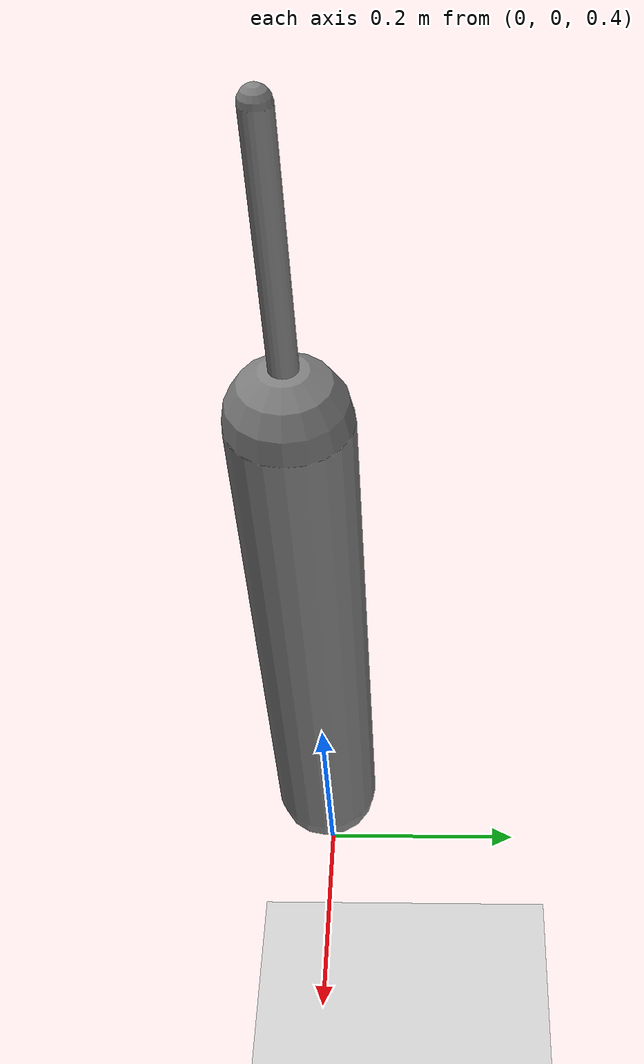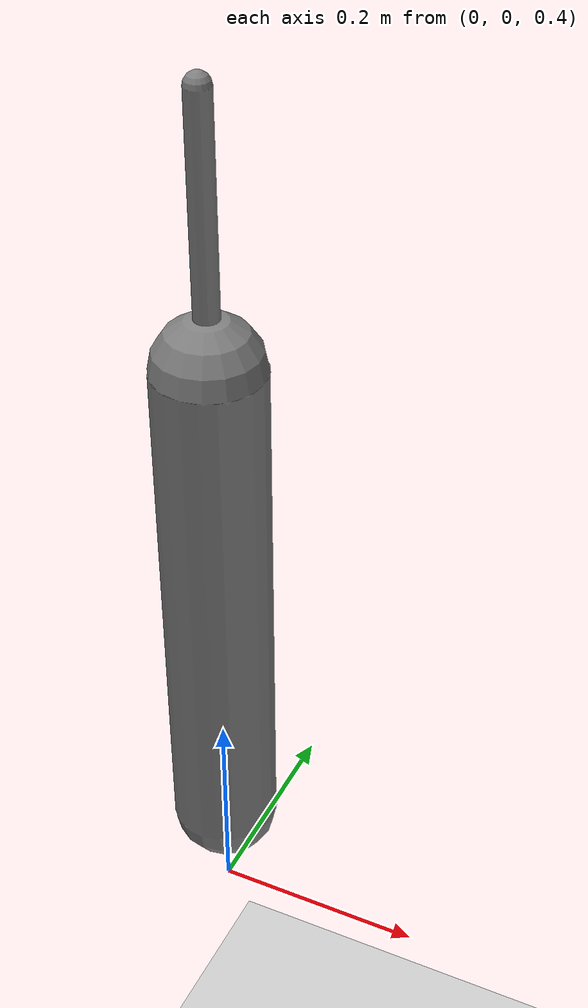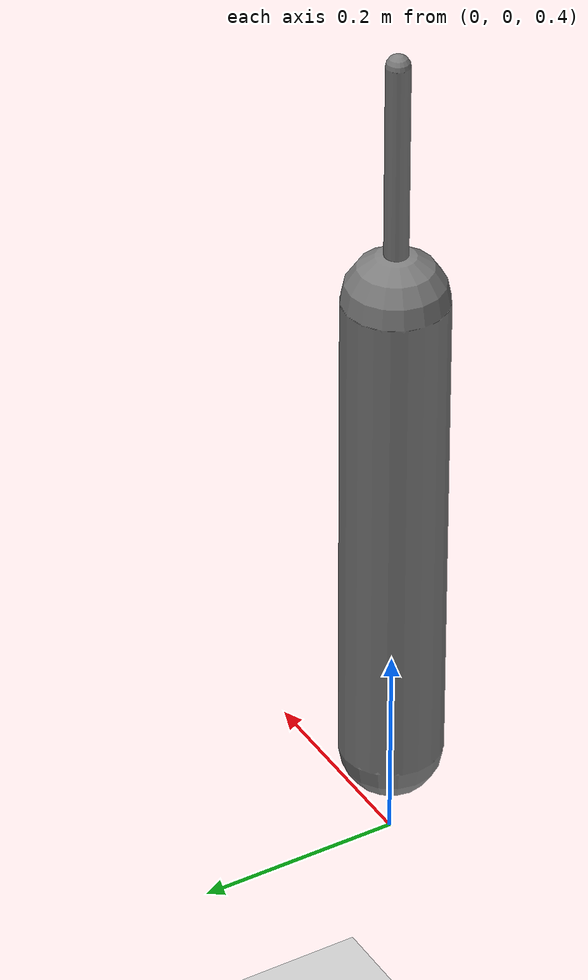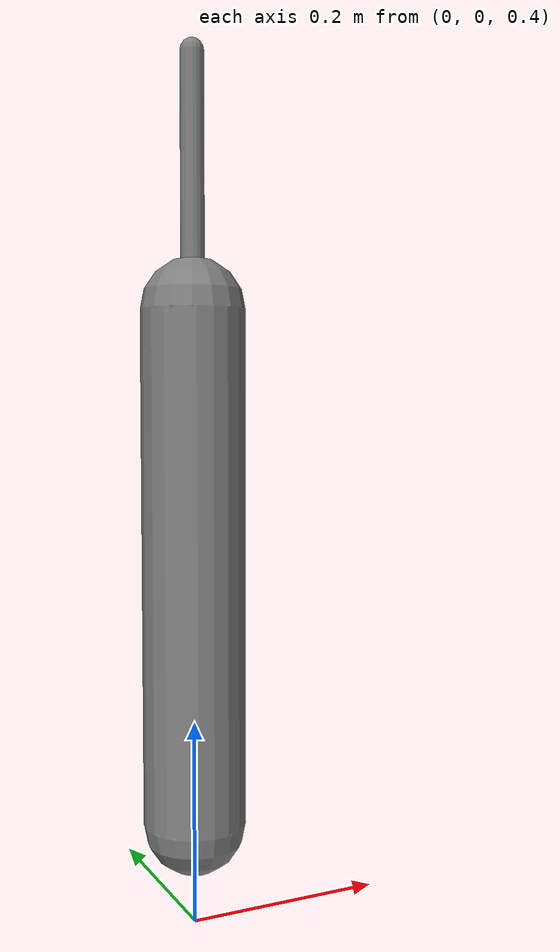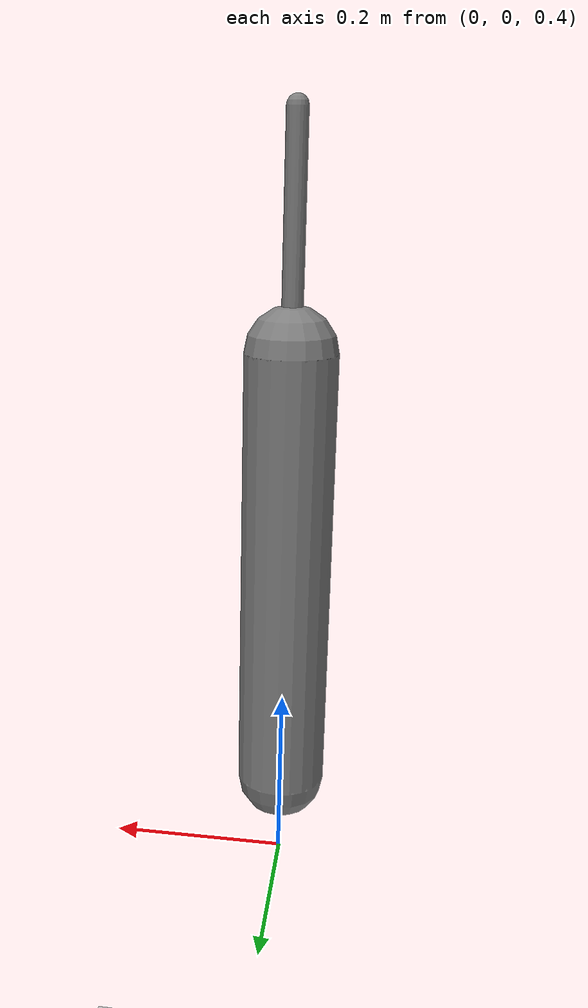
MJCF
<?xml version='1.0' encoding='UTF-8'?>
<mujoco model="RobotModel">
  <option gravity="0 0 -9.81" timestep="0.002" solver="CG" iterations="500" integrator="Euler"/>
  <worldbody>
    <geom name="Floor" type="plane" size="10 10 0.1" pos="0 0 0" rgba="0.8 0.8 0.8 1"/>
    <body name="Limb0" pos="0 0 0.5">
      <geom type="capsule" fromto="0 0 0 0 0 0.5" size="0.05" density="1000" contype="0" conaffinity="0"/>
      <body name="Limb0_a1985c77" pos="0 0 0.5">
        <geom type="capsule" fromto="0 0 0 0 0 0.23941564869986737" size="0.01136013008852509" density="800" contype="0" conaffinity="0"/>
        <joint name="Joint_Limb0_Limb0_a1985c77_0" type="hinge" axis="1 0 0" range="-60 60"/>
      </body>
    </body>
  </worldbody>
  <actuator>
    <position name="position_Actuator_Joint_Limb0_Limb0_a1985c77_0" joint="Joint_Limb0_Limb0_a1985c77_0" gear="1.0"/>
  </actuator>
</mujoco>
